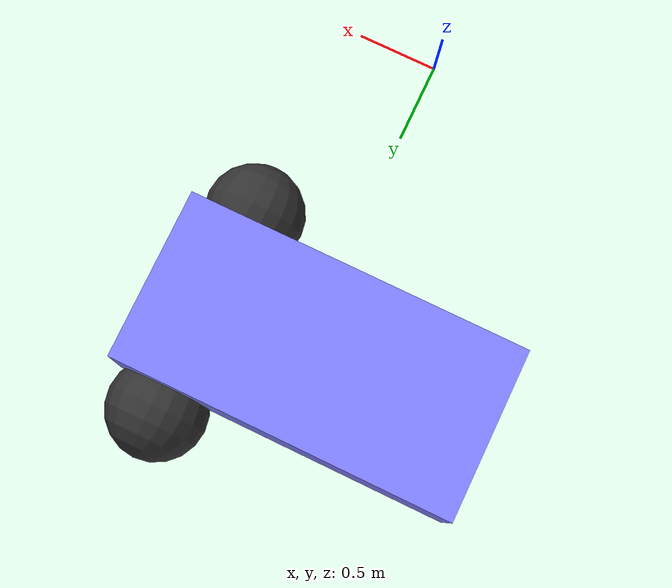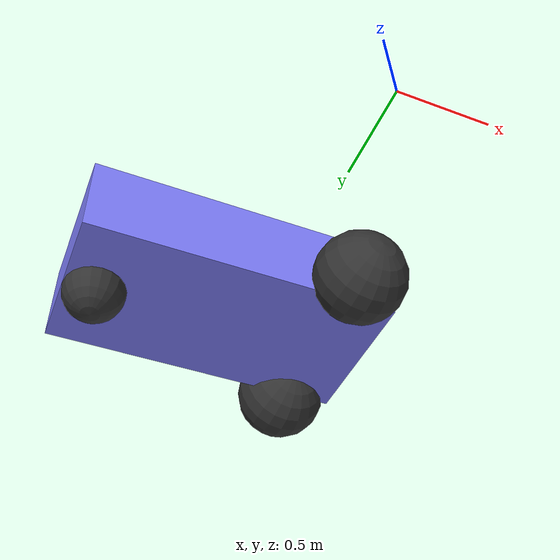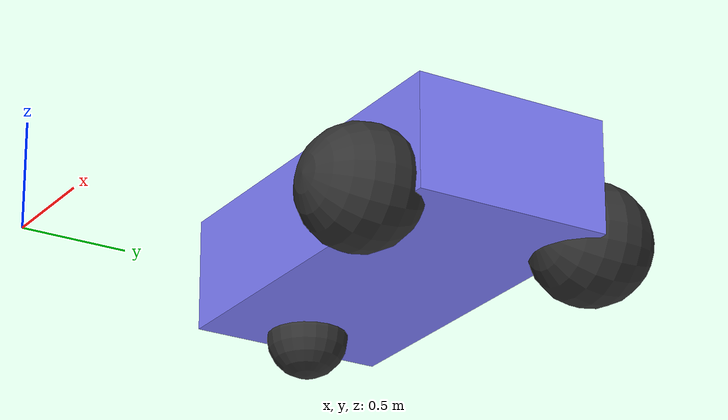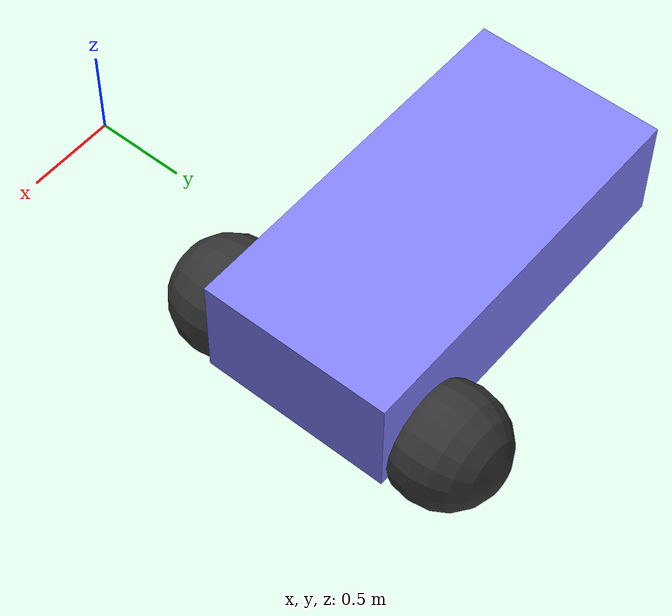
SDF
<?xml version="1.0" ?>

<sdf version="1.6">

  <model name='my_diffdrive_robot'>
    <pose>0 2 0.325 0 -0 0</pose>

    <link name='chassis'>
      <pose>-0.151427 -0 0.175 0 -0 0</pose>
      <inertial>
        <mass>1.14395</mass>
        <inertia>
          <ixx>0.126164</ixx>
          <ixy>0</ixy>
          <ixz>0</ixz>
          <iyy>0.416519</iyy>
          <iyz>0</iyz>
          <izz>0.481014</izz>
        </inertia>
      </inertial>
      <visual name='visual'>
        <geometry>
          <box>
            <size>2.01142 1 0.568726</size>
          </box>
        </geometry>
        <material>
          <ambient>0.5 0.5 1.0 1</ambient>
          <diffuse>0.5 0.5 1.0 1</diffuse>
          <specular>0.0 0.0 1.0 1</specular>
        </material>
      </visual>

      <collision name='collision'>
        <geometry>
          <box>
            <size>2.01142 1 0.568726</size>
          </box>
        </geometry>
      </collision>

      <sensor name='ps0' type='gpu_lidar'>
        <pose>1.02 0.2 0.1 0 0 0.29</pose>
        <lidar>
          <scan>
            <horizontal><samples>5</samples><resolution>1</resolution><min_angle>-0.1</min_angle><max_angle>0.1</max_angle></horizontal>
            <vertical><samples>1</samples><resolution>1</resolution><min_angle>-0.01</min_angle><max_angle>0.01</max_angle></vertical>
          </scan>
          <range><min>0.05</min><max>3.0</max><resolution>0.01</resolution></range>
        </lidar>
        <always_on>1</always_on>
        <update_rate>10</update_rate>
        <visualize>true</visualize>
        <topic>ps0</topic>
      </sensor>
      <sensor name='ps1' type='gpu_lidar'>
        <pose>0.82 0.52 0.1 0 0 0.78</pose>
        <lidar>
          <scan>
            <horizontal><samples>5</samples><resolution>1</resolution><min_angle>-0.1</min_angle><max_angle>0.1</max_angle></horizontal>
            <vertical><samples>1</samples><resolution>1</resolution><min_angle>-0.01</min_angle><max_angle>0.01</max_angle></vertical>
          </scan>
          <range><min>0.05</min><max>3.0</max><resolution>0.01</resolution></range>
        </lidar>
        <always_on>1</always_on>
        <update_rate>10</update_rate>
        <visualize>true</visualize>
        <topic>ps1</topic>
      </sensor>
      <sensor name='ps2' type='gpu_lidar'>
        <pose>0.0 0.52 0.1 0 0 1.57</pose>
        <lidar>
          <scan>
            <horizontal><samples>5</samples><resolution>1</resolution><min_angle>-0.1</min_angle><max_angle>0.1</max_angle></horizontal>
            <vertical><samples>1</samples><resolution>1</resolution><min_angle>-0.01</min_angle><max_angle>0.01</max_angle></vertical>
          </scan>
          <range><min>0.05</min><max>3.0</max><resolution>0.01</resolution></range>
        </lidar>
        <always_on>1</always_on>
        <update_rate>10</update_rate>
        <visualize>true</visualize>
        <topic>ps2</topic>
      </sensor>
      <sensor name='ps3' type='gpu_lidar'>
        <pose>-0.82 0.52 0.1 0 0 2.61</pose>
        <lidar>
          <scan>
            <horizontal><samples>5</samples><resolution>1</resolution><min_angle>-0.1</min_angle><max_angle>0.1</max_angle></horizontal>
            <vertical><samples>1</samples><resolution>1</resolution><min_angle>-0.01</min_angle><max_angle>0.01</max_angle></vertical>
          </scan>
          <range><min>0.05</min><max>3.0</max><resolution>0.01</resolution></range>
        </lidar>
        <always_on>1</always_on>
        <update_rate>10</update_rate>
        <visualize>true</visualize>
        <topic>ps3</topic>
      </sensor>
      <sensor name='ps4' type='gpu_lidar'>
        <pose>-0.82 -0.52 0.1 0 0 3.66</pose>
        <lidar>
          <scan>
            <horizontal><samples>5</samples><resolution>1</resolution><min_angle>-0.1</min_angle><max_angle>0.1</max_angle></horizontal>
            <vertical><samples>1</samples><resolution>1</resolution><min_angle>-0.01</min_angle><max_angle>0.01</max_angle></vertical>
          </scan>
          <range><min>0.05</min><max>3.0</max><resolution>0.01</resolution></range>
        </lidar>
        <always_on>1</always_on>
        <update_rate>10</update_rate>
        <visualize>true</visualize>
        <topic>ps4</topic>
      </sensor>
      <sensor name='ps5' type='gpu_lidar'>
        <pose>0.0 -0.52 0.1 0 0 4.71</pose>
        <lidar>
          <scan>
            <horizontal><samples>5</samples><resolution>1</resolution><min_angle>-0.1</min_angle><max_angle>0.1</max_angle></horizontal>
            <vertical><samples>1</samples><resolution>1</resolution><min_angle>-0.01</min_angle><max_angle>0.01</max_angle></vertical>
          </scan>
          <range><min>0.05</min><max>3.0</max><resolution>0.01</resolution></range>
        </lidar>
        <always_on>1</always_on>
        <update_rate>10</update_rate>
        <visualize>true</visualize>
        <topic>ps5</topic>
      </sensor>
      <sensor name='ps6' type='gpu_lidar'>
        <pose>0.82 -0.52 0.1 0 0 5.49</pose>
        <lidar>
          <scan>
            <horizontal><samples>5</samples><resolution>1</resolution><min_angle>-0.1</min_angle><max_angle>0.1</max_angle></horizontal>
            <vertical><samples>1</samples><resolution>1</resolution><min_angle>-0.01</min_angle><max_angle>0.01</max_angle></vertical>
          </scan>
          <range><min>0.05</min><max>3.0</max><resolution>0.01</resolution></range>
        </lidar>
        <always_on>1</always_on>
        <update_rate>10</update_rate>
        <visualize>true</visualize>
        <topic>ps6</topic>
      </sensor>
      <sensor name='ps7' type='gpu_lidar'>
        <pose>1.02 -0.2 0.1 0 0 5.99</pose>
        <lidar>
          <scan>
            <horizontal><samples>5</samples><resolution>1</resolution><min_angle>-0.1</min_angle><max_angle>0.1</max_angle></horizontal>
            <vertical><samples>1</samples><resolution>1</resolution><min_angle>-0.01</min_angle><max_angle>0.01</max_angle></vertical>
          </scan>
          <range><min>0.05</min><max>3.0</max><resolution>0.01</resolution></range>
        </lidar>
        <always_on>1</always_on>
        <update_rate>10</update_rate>
        <visualize>true</visualize>
        <topic>ps7</topic>
      </sensor>
      <sensor name="imu_sensor" type="imu">
        <always_on>1</always_on>
        <update_rate>50</update_rate>
        <visualize>true</visualize>
        <topic>imu</topic>
      </sensor>
    </link>

    <link name='left_wheel'>
      <pose>0.554283 0.625029 -0.025 -1.5707 0 0</pose>
      <inertial>
        <mass>2</mass>
        <inertia>
          <ixx>0.145833</ixx>
          <ixy>0</ixy>
          <ixz>0</ixz>
          <iyy>0.145833</iyy>
          <iyz>0</iyz>
          <izz>0.125</izz>
        </inertia>
      </inertial>
      <visual name='visual'>
        <geometry>
          <sphere>
            <radius>0.3</radius>
          </sphere>
        </geometry>
        <material>
          <ambient>0.2 0.2 0.2 1</ambient>
          <diffuse>0.2 0.2 0.2 1</diffuse>
          <specular>0.2 0.2 0.2 1</specular>
        </material>
      </visual>
      <collision name='collision'>
        <geometry>
          <sphere>
            <radius>0.3</radius>
          </sphere>
        </geometry>
        <surface>
          <friction>
            <ode>
              <mu>1</mu>
              <mu2>1</mu2>
              <slip1>0.035</slip1>
              <slip2>0</slip2>
              <fdir1>0 0 1</fdir1>
            </ode>
            <bullet>
              <friction>1</friction>
              <friction2>1</friction2>
              <rolling_friction>0.1</rolling_friction>
            </bullet>
          </friction>
        </surface>
      </collision>
    </link>

    <link name='right_wheel'>
      <pose>0.554282 -0.625029 -0.025 -1.5707 0 0</pose>
      <inertial>
        <mass>2</mass>
        <inertia>
          <ixx>0.145833</ixx>
          <ixy>0</ixy>
          <ixz>0</ixz>
          <iyy>0.145833</iyy>
          <iyz>0</iyz>
          <izz>0.125</izz>
        </inertia>
      </inertial>
      <visual name='visual'>
        <geometry>
          <sphere>
            <radius>0.3</radius>
          </sphere>
        </geometry>
        <material>
          <ambient>0.2 0.2 0.2 1</ambient>
          <diffuse>0.2 0.2 0.2 1</diffuse>
          <specular>0.2 0.2 0.2 1</specular>
        </material>
      </visual>
      <collision name='collision'>
        <geometry>
          <sphere>
            <radius>0.3</radius>
          </sphere>
        </geometry>
        <surface>
          <friction>
            <ode>
              <mu>1</mu>
              <mu2>1</mu2>
              <slip1>0.035</slip1>
              <slip2>0</slip2>
              <fdir1>0 0 1</fdir1>
            </ode>
            <bullet>
              <friction>1</friction>
              <friction2>1</friction2>
              <rolling_friction>0.1</rolling_friction>
            </bullet>
          </friction>
        </surface>
      </collision>
    </link>

    <link name='caster'>
      <pose>-0.957138 -0 -0.125 0 -0 0</pose>
      <inertial>
        <mass>1</mass>
        <inertia>
          <ixx>0.1</ixx>
          <ixy>0</ixy>
          <ixz>0</ixz>
          <iyy>0.1</iyy>
          <iyz>0</iyz>
          <izz>0.1</izz>
        </inertia>
      </inertial>
      <visual name='visual'>
        <geometry>
          <sphere>
            <radius>0.2</radius>
          </sphere>
        </geometry>
        <material>
          <ambient>0.2 0.2 0.2 1</ambient>
          <diffuse>0.2 0.2 0.2 1</diffuse>
          <specular>0.2 0.2 0.2 1</specular>
        </material>
      </visual>
      <collision name='collision'>
        <geometry>
          <sphere>
            <radius>0.2</radius>
          </sphere>
        </geometry>
      </collision>
    </link>

    <joint name='left_wheel_joint' type='revolute'>
      <parent>chassis</parent>
      <child>left_wheel</child>
      <axis>
        <xyz>0 0 1</xyz>
        <limit>
          <lower>-1.79769e+308</lower>
          <upper>1.79769e+308</upper>
        </limit>
      </axis>
    </joint>

    <joint name='right_wheel_joint' type='revolute'>
      <parent>chassis</parent>
      <child>right_wheel</child>
      <axis>
        <xyz>0 0 1</xyz>
        <limit>
          <lower>-1.79769e+308</lower>
          <upper>1.79769e+308</upper>
        </limit>
      </axis>
    </joint>

    <joint name='caster_wheel' type='ball'>
      <parent>chassis</parent>
      <child>caster</child>
    </joint>

    <plugin
      filename="libignition-gazebo-velocity-control-system.so"
      name="ignition::gazebo::systems::VelocityControl">
      <link_name>chassis</link_name>
    </plugin>

    <plugin
      filename="libignition-gazebo-odometry-publisher-system.so"
      name="ignition::gazebo::systems::OdometryPublisher">
      <odom_frame>odom</odom_frame>
      <robot_base_frame>chassis</robot_base_frame>
      <odom_topic>/model/my_diffdrive_robot/odometry</odom_topic>
    </plugin>

  </model>

</sdf>
